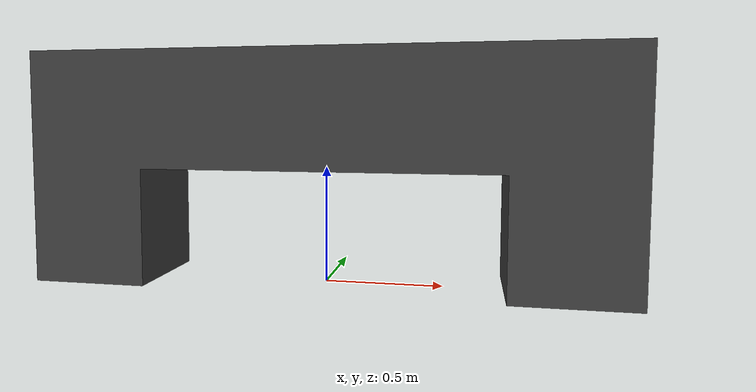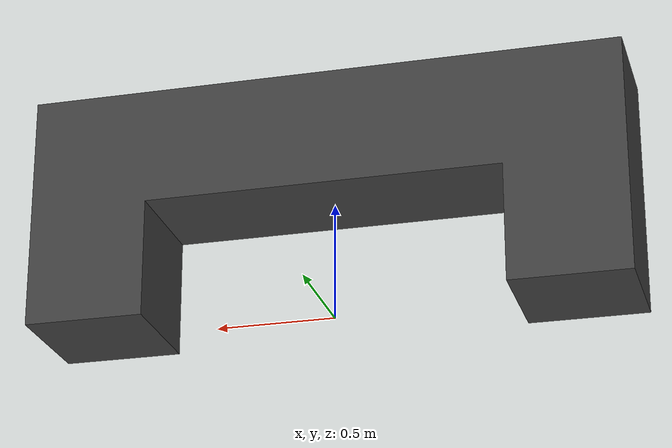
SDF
<?xml version="1.0" ?>
<sdf version="1.6">

  <model name="platform">

    <static>true</static>

    <link name="platform_link">

      <!-- VISUAL -->
      <visual name="visual">

        <geometry>
          <mesh>
            <uri>model://platform/meshes/platform.dae</uri>

            <!-- SCALE -->
            <scale>1 1 1</scale>

          </mesh>
        </geometry>

         <material>

          <!-- base color -->
          <ambient>0.2 0.2 0.2 1</ambient>
          <diffuse>0.25 0.25 0.25 1</diffuse>
          <specular>0 0 0 1</specular>
          <emissive>0 0 0 1</emissive>

          <!-- remove ugly reflections -->

          <!-- no glow -->

        </material>

      </visual>

      <collision name="collision">

        <!-- slightly lower collision for stability -->
        <pose>0 0 0.5 0 0 0</pose>

        <geometry>
          <box>
            <size>1.5 0.5 1.0</size>
          </box>
        </geometry>

        <surface>

          <!-- friction tuning -->
          <friction>
            <ode>
              <mu>0.35</mu>
              <mu2>0.35</mu2>
            </ode>
          </friction>

          <!-- softer contacts -->
          <contact>
            <ode>
              <kp>100000</kp>
              <kd>1</kd>
            </ode>
          </contact>

          <!-- bounce -->
          <bounce>
            <restitution_coefficient>0.05</restitution_coefficient>
            <threshold>0.01</threshold>
          </bounce>

        </surface>

      </collision>

    </link>

  </model>

</sdf>
